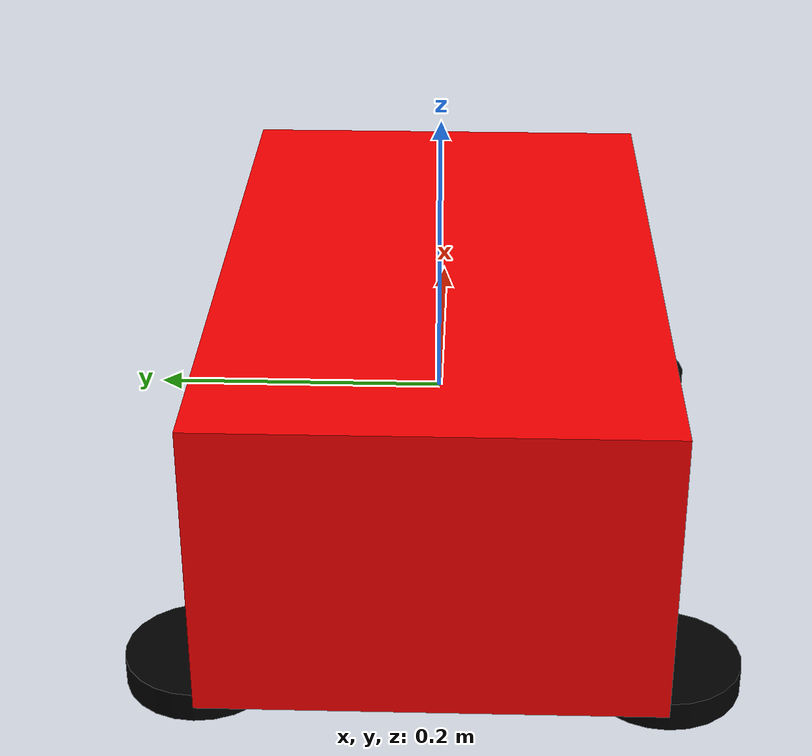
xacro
<?xml version="1.0" ?>
<!-- |    This document was autogenerated by xacro from thesis/urdf/rover.urdf.xacro   | -->
<!-- |    EDITING THIS FILE BY HAND IS NOT RECOMMENDED                                 | -->
<robot name="rover">
  <link name="base_link">
    <visual>
      <geometry>
        <box size="0.5 0.3 0.2"/>
      </geometry>
      <material name="red">
        <color rgba="1 0 0 1"/>
        <!-- Changed to red for better visibility -->
      </material>
    </visual>
    <collision>
      <geometry>
        <box size="0.5 0.3 0.2"/>
      </geometry>
    </collision>
  </link>
  <!-- Front Left Wheel -->
  <joint name="base_to_front_left_wheel" type="continuous">
    <parent link="base_link"/>
    <child link="front_left_wheel"/>
    <origin rpy="0 0 0" xyz="0.2 0.15 -0.1"/>
    <axis xyz="0 1 0"/>
  </joint>
  <link name="front_left_wheel">
    <visual>
      <geometry>
        <cylinder length="0.02" radius="0.05"/>
      </geometry>
      <material name="green">
        <color rgba="0 0 0 1"/>
      </material>
    </visual>
    <collision>
      <geometry>
        <cylinder length="0.02" radius="0.05"/>
      </geometry>
    </collision>
  </link>
  <!-- Front Right Wheel -->
  <joint name="base_to_front_right_wheel" type="continuous">
    <parent link="base_link"/>
    <child link="front_right_wheel"/>
    <origin rpy="0 0 0" xyz="0.2 -0.15 -0.1"/>
    <axis xyz="0 1 0"/>
  </joint>
  <link name="front_right_wheel">
    <visual>
      <geometry>
        <cylinder length="0.02" radius="0.05"/>
      </geometry>
      <material name="green">
        <color rgba="0 0 0 1"/>
      </material>
    </visual>
    <collision>
      <geometry>
        <cylinder length="0.02" radius="0.05"/>
      </geometry>
    </collision>
  </link>
  <!-- Rear Left Wheel -->
  <joint name="base_to_rear_left_wheel" type="continuous">
    <parent link="base_link"/>
    <child link="rear_left_wheel"/>
    <origin rpy="0 0 0" xyz="-0.2 0.15 -0.1"/>
    <axis xyz="0 1 0"/>
  </joint>
  <link name="rear_left_wheel">
    <visual>
      <geometry>
        <cylinder length="0.02" radius="0.05"/>
      </geometry>
      <material name="green">
        <color rgba="0 0 0 1"/>
      </material>
    </visual>
    <collision>
      <geometry>
        <cylinder length="0.02" radius="0.05"/>
      </geometry>
    </collision>
  </link>
  <!-- Rear Right Wheel -->
  <joint name="base_to_rear_right_wheel" type="continuous">
    <parent link="base_link"/>
    <child link="rear_right_wheel"/>
    <origin rpy="0 0 0" xyz="-0.2 -0.15 -0.1"/>
    <axis xyz="0 1 0"/>
  </joint>
  <link name="rear_right_wheel">
    <visual>
      <geometry>
        <cylinder length="0.02" radius="0.05"/>
      </geometry>
      <material name="green">
        <color rgba="0 0 0 1"/>
      </material>
    </visual>
    <collision>
      <geometry>
        <cylinder length="0.02" radius="0.05"/>
      </geometry>
    </collision>
  </link>
</robot>
